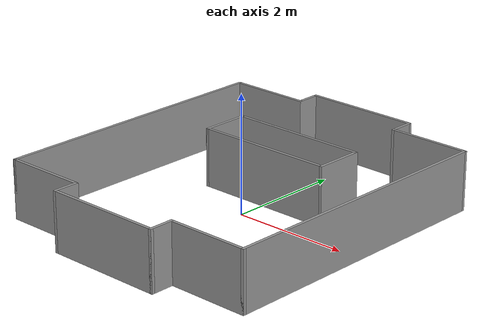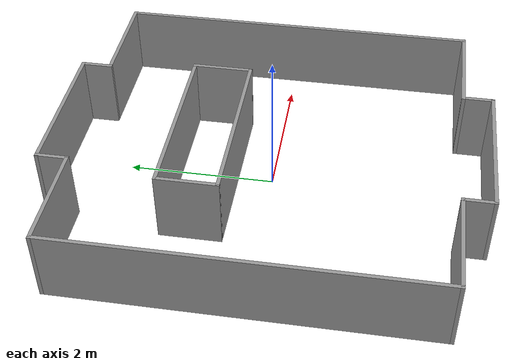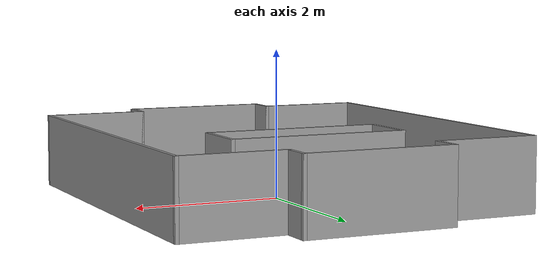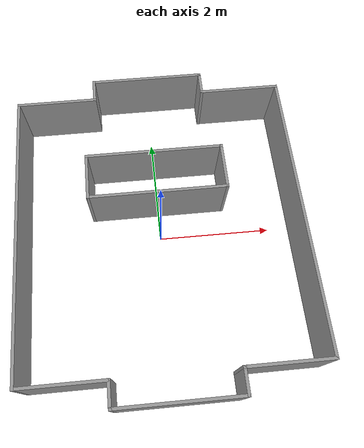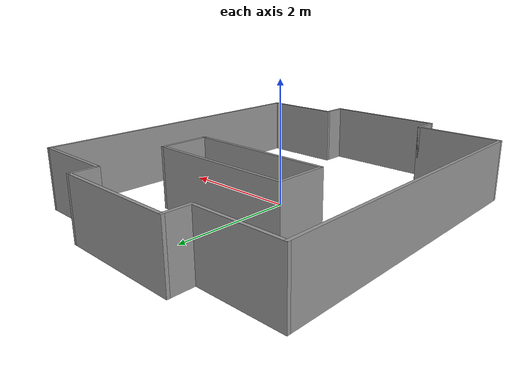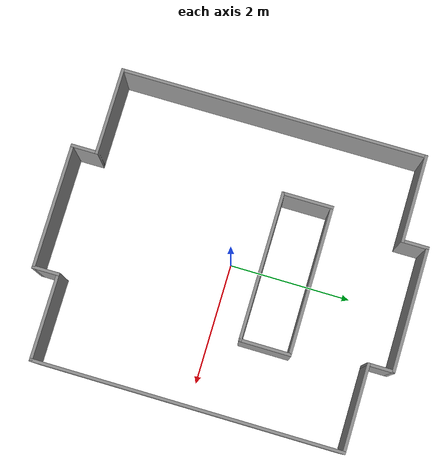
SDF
<?xml version='1.0'?>
<sdf version='1.6'>
  <model name='rgarena2'>
    <pose frame=''>0.000225 0 0 0 -0 0</pose>
    <link name='Wall_0'>
      <collision name='Wall_0_Collision'>
        <geometry>
          <box>
            <size>5.05 0.05 1</size>
          </box>
        </geometry>
        <pose frame=''>0 0 0.5 0 -0 0</pose>
      </collision>
      <visual name='Wall_0_Visual'>
        <pose frame=''>0 0 0.5 0 -0 0</pose>
        <geometry>
          <box>
            <size>5.05 0.05 1</size>
          </box>
        </geometry>
        <material>
          <script>
            <uri>file://media/materials/scripts/gazebo.material</uri>
            <name>Gazebo/Grey</name>
          </script>
          <ambient>1 1 1 1</ambient>
        </material>
        <meta>
          <layer>0</layer>
        </meta>
      </visual>
      <pose frame=''>-2.40022 0 0 0 -0 1.5708</pose>
    </link>
    <link name='Wall_14'>
      <collision name='Wall_14_Collision'>
        <geometry>
          <box>
            <size>1.45 0.05 1</size>
          </box>
        </geometry>
        <pose frame=''>0 0 0.5 0 -0 0</pose>
      </collision>
      <visual name='Wall_14_Visual'>
        <pose frame=''>0 0 0.5 0 -0 0</pose>
        <geometry>
          <box>
            <size>1.45 0.05 1</size>
          </box>
        </geometry>
        <material>
          <script>
            <uri>file://media/materials/scripts/gazebo.material</uri>
            <name>Gazebo/Grey</name>
          </script>
          <ambient>1 1 1 1</ambient>
        </material>
        <meta>
          <layer>0</layer>
        </meta>
      </visual>
      <pose frame=''>-1.70023 -2.5 0 0 -0 0</pose>
    </link>
    <link name='Wall_16'>
      <collision name='Wall_16_Collision'>
        <geometry>
          <box>
            <size>0.45 0.05 1</size>
          </box>
        </geometry>
        <pose frame=''>0 0 0.5 0 -0 0</pose>
      </collision>
      <visual name='Wall_16_Visual'>
        <pose frame=''>0 0 0.5 0 -0 0</pose>
        <geometry>
          <box>
            <size>0.45 0.05 1</size>
          </box>
        </geometry>
        <material>
          <script>
            <uri>file://media/materials/scripts/gazebo.material</uri>
            <name>Gazebo/Grey</name>
          </script>
          <ambient>1 1 1 1</ambient>
        </material>
        <meta>
          <layer>0</layer>
        </meta>
      </visual>
      <pose frame=''>-1.00022 -2.7 0 0 -0 -1.5708</pose>
    </link>
    <link name='Wall_18'>
      <collision name='Wall_18_Collision'>
        <geometry>
          <box>
            <size>2.065 0.05 1</size>
          </box>
        </geometry>
        <pose frame=''>0 0 0.5 0 -0 0</pose>
      </collision>
      <visual name='Wall_18_Visual'>
        <pose frame=''>0 0 0.5 0 -0 0</pose>
        <geometry>
          <box>
            <size>2.065 0.05 1</size>
          </box>
        </geometry>
        <material>
          <script>
            <uri>file://media/materials/scripts/gazebo.material</uri>
            <name>Gazebo/Grey</name>
          </script>
          <ambient>1 1 1 1</ambient>
        </material>
        <meta>
          <layer>0</layer>
        </meta>
      </visual>
      <pose frame=''>0.007275 -2.9 0 0 -0 0</pose>
    </link>
    <link name='Wall_19'>
      <collision name='Wall_19_Collision'>
        <geometry>
          <box>
            <size>0.45 0.05 1</size>
          </box>
        </geometry>
        <pose frame=''>0 0 0.5 0 -0 0</pose>
      </collision>
      <visual name='Wall_19_Visual'>
        <pose frame=''>0 0 0.5 0 -0 0</pose>
        <geometry>
          <box>
            <size>0.45 0.05 1</size>
          </box>
        </geometry>
        <material>
          <script>
            <uri>file://media/materials/scripts/gazebo.material</uri>
            <name>Gazebo/Grey</name>
          </script>
          <ambient>1 1 1 1</ambient>
        </material>
        <meta>
          <layer>0</layer>
        </meta>
      </visual>
      <pose frame=''>1.01477 -2.7 0 0 -0 1.5708</pose>
    </link>
    <link name='Wall_20'>
      <collision name='Wall_20_Collision'>
        <geometry>
          <box>
            <size>1.4359 0.05 1</size>
          </box>
        </geometry>
        <pose frame=''>0 0 0.5 0 -0 0</pose>
      </collision>
      <visual name='Wall_20_Visual'>
        <pose frame=''>0 0 0.5 0 -0 0</pose>
        <geometry>
          <box>
            <size>1.4359 0.05 1</size>
          </box>
        </geometry>
        <material>
          <script>
            <uri>file://media/materials/scripts/gazebo.material</uri>
            <name>Gazebo/Grey</name>
          </script>
          <ambient>1 1 1 1</ambient>
        </material>
        <meta>
          <layer>0</layer>
        </meta>
      </visual>
      <pose frame=''>1.70728 -2.5 0 0 -0 0</pose>
    </link>
    <link name='Wall_23'>
      <collision name='Wall_23_Collision'>
        <geometry>
          <box>
            <size>5.05 0.05 1</size>
          </box>
        </geometry>
        <pose frame=''>0 0 0.5 0 -0 0</pose>
      </collision>
      <visual name='Wall_23_Visual'>
        <pose frame=''>0 0 0.5 0 -0 0</pose>
        <geometry>
          <box>
            <size>5.05 0.05 1</size>
          </box>
        </geometry>
        <material>
          <script>
            <uri>file://media/materials/scripts/gazebo.material</uri>
            <name>Gazebo/Grey</name>
          </script>
          <ambient>1 1 1 1</ambient>
        </material>
        <meta>
          <layer>0</layer>
        </meta>
      </visual>
      <pose frame=''>2.39977 0 0 0 -0 1.5708</pose>
    </link>
    <link name='Wall_25'>
      <collision name='Wall_25_Collision'>
        <geometry>
          <box>
            <size>1.45 0.05 1</size>
          </box>
        </geometry>
        <pose frame=''>0 0 0.5 0 -0 0</pose>
      </collision>
      <visual name='Wall_25_Visual'>
        <pose frame=''>0 0 0.5 0 -0 0</pose>
        <geometry>
          <box>
            <size>1.45 0.05 1</size>
          </box>
        </geometry>
        <material>
          <script>
            <uri>file://media/materials/scripts/gazebo.material</uri>
            <name>Gazebo/Grey</name>
          </script>
          <ambient>1 1 1 1</ambient>
        </material>
        <meta>
          <layer>0</layer>
        </meta>
      </visual>
      <pose frame=''>1.69978 2.5 0 0 -0 3.14159</pose>
    </link>
    <link name='Wall_28'>
      <collision name='Wall_28_Collision'>
        <geometry>
          <box>
            <size>0.45 0.05 1</size>
          </box>
        </geometry>
        <pose frame=''>0 0 0.5 0 -0 0</pose>
      </collision>
      <visual name='Wall_28_Visual'>
        <pose frame=''>0 0 0.5 0 -0 0</pose>
        <geometry>
          <box>
            <size>0.45 0.05 1</size>
          </box>
        </geometry>
        <material>
          <script>
            <uri>file://media/materials/scripts/gazebo.material</uri>
            <name>Gazebo/Grey</name>
          </script>
          <ambient>1 1 1 1</ambient>
        </material>
        <meta>
          <layer>0</layer>
        </meta>
      </visual>
      <pose frame=''>0.999775 2.7 0 0 -0 1.5708</pose>
    </link>
    <link name='Wall_29'>
      <collision name='Wall_29_Collision'>
        <geometry>
          <box>
            <size>2.05 0.05 1</size>
          </box>
        </geometry>
        <pose frame=''>0 0 0.5 0 -0 0</pose>
      </collision>
      <visual name='Wall_29_Visual'>
        <pose frame=''>0 0 0.5 0 -0 0</pose>
        <geometry>
          <box>
            <size>2.05 0.05 1</size>
          </box>
        </geometry>
        <material>
          <script>
            <uri>file://media/materials/scripts/gazebo.material</uri>
            <name>Gazebo/Grey</name>
          </script>
          <ambient>1 1 1 1</ambient>
        </material>
        <meta>
          <layer>0</layer>
        </meta>
      </visual>
      <pose frame=''>-0.000225 2.9 0 0 -0 3.14159</pose>
    </link>
    <link name='Wall_30'>
      <collision name='Wall_30_Collision'>
        <geometry>
          <box>
            <size>0.45 0.05 1</size>
          </box>
        </geometry>
        <pose frame=''>0 0 0.5 0 -0 0</pose>
      </collision>
      <visual name='Wall_30_Visual'>
        <pose frame=''>0 0 0.5 0 -0 0</pose>
        <geometry>
          <box>
            <size>0.45 0.05 1</size>
          </box>
        </geometry>
        <material>
          <script>
            <uri>file://media/materials/scripts/gazebo.material</uri>
            <name>Gazebo/Grey</name>
          </script>
          <ambient>1 1 1 1</ambient>
        </material>
        <meta>
          <layer>0</layer>
        </meta>
      </visual>
      <pose frame=''>-1.00022 2.7 0 0 -0 -1.5708</pose>
    </link>
    <link name='Wall_31'>
      <collision name='Wall_31_Collision'>
        <geometry>
          <box>
            <size>1.45 0.05 1</size>
          </box>
        </geometry>
        <pose frame=''>0 0 0.5 0 -0 0</pose>
      </collision>
      <visual name='Wall_31_Visual'>
        <pose frame=''>0 0 0.5 0 -0 0</pose>
        <geometry>
          <box>
            <size>1.45 0.05 1</size>
          </box>
        </geometry>
        <material>
          <script>
            <uri>file://media/materials/scripts/gazebo.material</uri>
            <name>Gazebo/Grey</name>
          </script>
          <ambient>1 1 1 1</ambient>
        </material>
        <meta>
          <layer>0</layer>
        </meta>
      </visual>
      <pose frame=''>-1.70023 2.5 0 0 -0 3.14159</pose>
    </link>
    <link name='Wall_36'>
      <collision name='Wall_36_Collision'>
        <geometry>
          <box>
            <size>0.85 0.05 1</size>
          </box>
        </geometry>
        <pose frame=''>0 0 0.5 0 -0 0</pose>
      </collision>
      <visual name='Wall_36_Visual'>
        <pose frame=''>0 0 0.5 0 -0 0</pose>
        <geometry>
          <box>
            <size>0.85 0.05 1</size>
          </box>
        </geometry>
        <material>
          <script>
            <uri>file://media/materials/scripts/gazebo.material</uri>
            <name>Gazebo/Grey</name>
          </script>
          <ambient>1 1 1 1</ambient>
        </material>
        <meta>
          <layer>0</layer>
        </meta>
      </visual>
      <pose frame=''>-1.20023 0.9 0 0 -0 -1.5708</pose>
    </link>
    <link name='Wall_37'>
      <collision name='Wall_37_Collision'>
        <geometry>
          <box>
            <size>2.44917 0.05 1</size>
          </box>
        </geometry>
        <pose frame=''>0 0 0.5 0 -0 0</pose>
      </collision>
      <visual name='Wall_37_Visual'>
        <pose frame=''>0 0 0.5 0 -0 0</pose>
        <geometry>
          <box>
            <size>2.44917 0.05 1</size>
          </box>
        </geometry>
        <material>
          <script>
            <uri>file://media/materials/scripts/gazebo.material</uri>
            <name>Gazebo/Grey</name>
          </script>
          <ambient>1 1 1 1</ambient>
        </material>
        <meta>
          <layer>0</layer>
        </meta>
      </visual>
      <pose frame=''>-0.000225 0.5 0 0 -0 0</pose>
    </link>
    <link name='Wall_38'>
      <collision name='Wall_38_Collision'>
        <geometry>
          <box>
            <size>0.85 0.05 1</size>
          </box>
        </geometry>
        <pose frame=''>0 0 0.5 0 -0 0</pose>
      </collision>
      <visual name='Wall_38_Visual'>
        <pose frame=''>0 0 0.5 0 -0 0</pose>
        <geometry>
          <box>
            <size>0.85 0.05 1</size>
          </box>
        </geometry>
        <material>
          <script>
            <uri>file://media/materials/scripts/gazebo.material</uri>
            <name>Gazebo/Grey</name>
          </script>
          <ambient>1 1 1 1</ambient>
        </material>
        <meta>
          <layer>0</layer>
        </meta>
      </visual>
      <pose frame=''>1.19978 0.9 0 0 -0 1.5708</pose>
    </link>
    <link name='Wall_39'>
      <collision name='Wall_39_Collision'>
        <geometry>
          <box>
            <size>2.45 0.05 1</size>
          </box>
        </geometry>
        <pose frame=''>0 0 0.5 0 -0 0</pose>
      </collision>
      <visual name='Wall_39_Visual'>
        <pose frame=''>0 0 0.5 0 -0 0</pose>
        <geometry>
          <box>
            <size>2.45 0.05 1</size>
          </box>
        </geometry>
        <material>
          <script>
            <uri>file://media/materials/scripts/gazebo.material</uri>
            <name>Gazebo/Grey</name>
          </script>
          <ambient>1 1 1 1</ambient>
        </material>
        <meta>
          <layer>0</layer>
        </meta>
      </visual>
      <pose frame=''>-0.000225 1.3 0 0 -0 3.14159</pose>
    </link>
    <static>1</static>
  </model>
</sdf>
